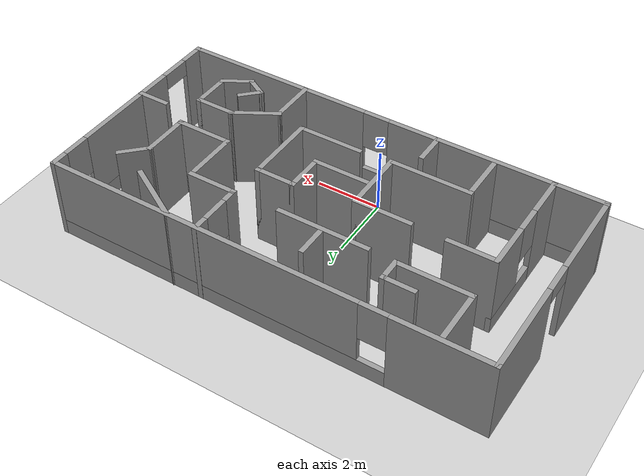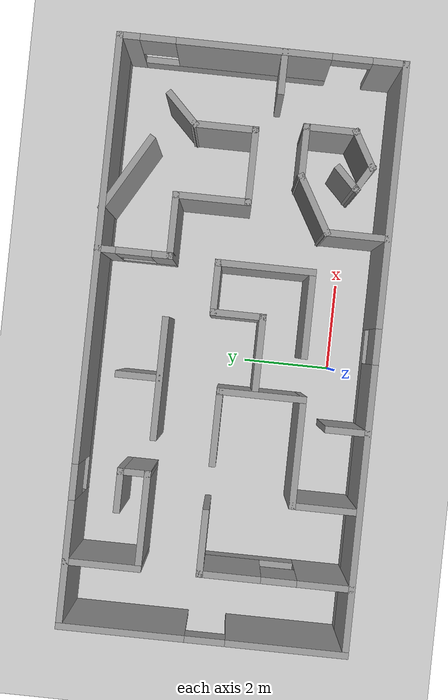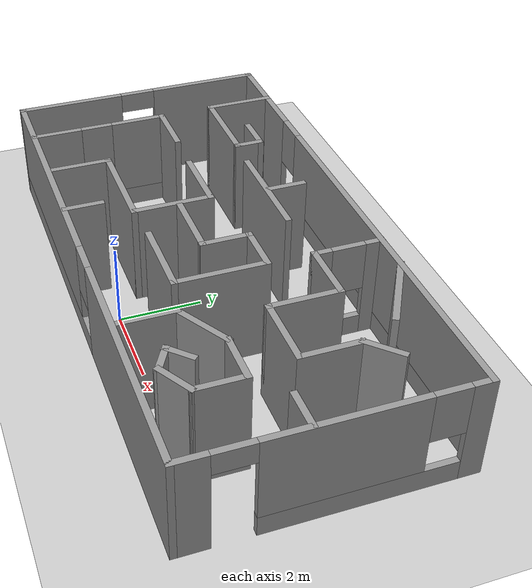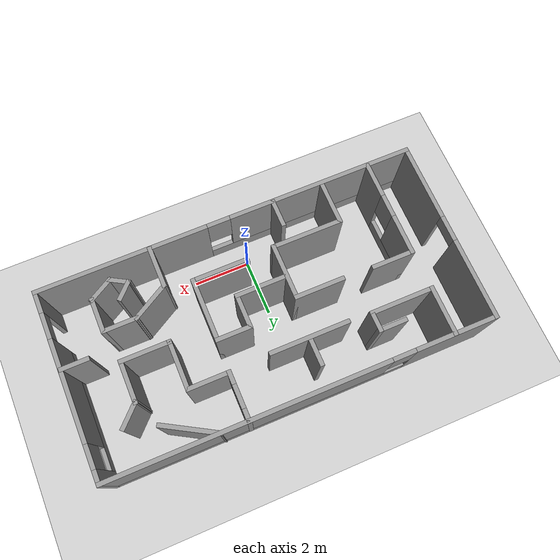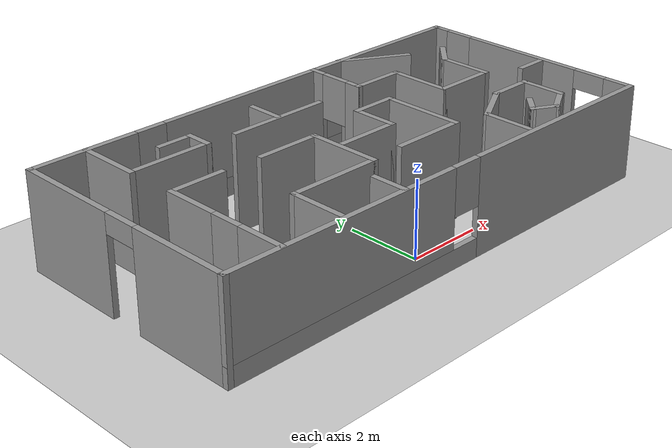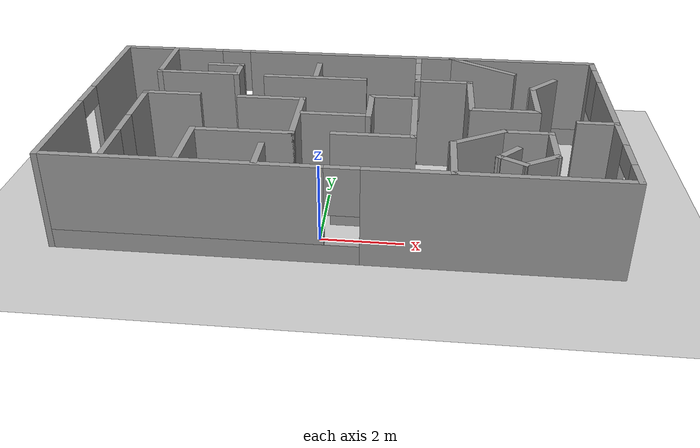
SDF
<sdf version="1.7">
 <world name="default">
  <light name="sun" type="directional">
   <pose>0 0 10 0 -0 0</pose>
   <diffuse>0.8 0.8 0.8 1</diffuse>
   <specular>0.2 0.2 0.2 1</specular>
   <attenuation>
    <range>1000</range>
    <constant>0.9</constant>
    <linear>0.01</linear>
    <quadratic>0.001</quadratic>
   </attenuation>
   <direction>-0.5 0.1 -0.9</direction>
   <spot><inner_angle>0</inner_angle><outer_angle>0</outer_angle><falloff>0</falloff></spot>
  </light>
  <model name="ground_plane">
   <static>1</static>
   <link name="link">
    <collision name="collision">
     <geometry><plane><normal>0 0 1</normal><size>100 100</size></plane></geometry>
     <surface>
      <contact><collide_bitmask>65535</collide_bitmask></contact>
      <friction><ode><mu>100</mu><mu2>50</mu2></ode></friction>
     </surface>
    </collision>
    <visual name="visual">
     <cast_shadows>0</cast_shadows>
     <geometry><plane><normal>0 0 1</normal><size>100 100</size></plane></geometry>
     <material>
      <script><uri>file://media/materials/scripts/gazebo.material</uri><name>Gazebo/Grey</name></script>
     </material>
    </visual>
   </link>
  </model>
  <gravity>0 0 -9.8</gravity>
  <magnetic_field>6e-06 2.3e-05 -4.2e-05</magnetic_field>
  <atmosphere type="adiabatic"/>
  <physics type="ode">
   <max_step_size>0.001</max_step_size>
   <real_time_factor>1</real_time_factor>
   <real_time_update_rate>1000</real_time_update_rate>
  </physics>
  <scene><ambient>0.4 0.4 0.4 1</ambient><background>0.7 0.7 0.7 1</background><shadows>1</shadows></scene>
  <spherical_coordinates>
   <surface_model>EARTH_WGS84</surface_model>
   <latitude_deg>0</latitude_deg>
   <longitude_deg>0</longitude_deg>
   <elevation>0</elevation>
   <heading_deg>0</heading_deg>
  </spherical_coordinates>
  <model name="Basic_Maze">
   <pose>0.327483 2.34993 0 0 -0 0</pose>
   <link name="Wall_0">
    <pose>-6.55 -0.015691 0 0 -0 1.5708</pose>
    <visual name="Wall_0_Visual_0">
     <pose>-1.87793 0 1.25 0 -0 0</pose>
     <geometry><box><size>2.74415 0.15 2.5</size></box></geometry>
     <material>
      <script><uri>file://media/materials/scripts/gazebo.material</uri><name>Gazebo/Grey</name></script>
      <ambient>1 1 1 1</ambient>
     </material>
     <meta><layer>0</layer></meta>
    </visual>
    <collision name="Wall_0_Collision_0">
     <geometry><box><size>2.74415 0.15 2.5</size></box></geometry>
     <pose>-1.87793 0 1.25 0 -0 0</pose>
    </collision>
    <visual name="Wall_0_Visual_1">
     <pose>1.82207 0 1.25 0 -0 0</pose>
     <geometry><box><size>2.85585 0.15 2.5</size></box></geometry>
     <material>
      <script><uri>file://media/materials/scripts/gazebo.material</uri><name>Gazebo/Grey</name></script>
      <ambient>1 1 1 1</ambient>
     </material>
     <meta><layer>0</layer></meta>
    </visual>
    <collision name="Wall_0_Collision_1">
     <geometry><box><size>2.85585 0.15 2.5</size></box></geometry>
     <pose>1.82207 0 1.25 0 -0 0</pose>
    </collision>
    <visual name="Wall_0_Visual_2">
     <pose>-0.055853 0 2.25 0 -0 0</pose>
     <geometry><box><size>0.9 0.15 0.5</size></box></geometry>
     <material>
      <script><uri>file://media/materials/scripts/gazebo.material</uri><name>Gazebo/Grey</name></script>
      <ambient>1 1 1 1</ambient>
     </material>
     <meta><layer>0</layer></meta>
    </visual>
    <collision name="Wall_0_Collision_2">
     <geometry><box><size>0.9 0.15 0.5</size></box></geometry>
     <pose>-0.055853 0 2.25 0 -0 0</pose>
    </collision>
   </link>
   <link name="Wall_1">
    <pose>-0 3.15931 0 0 -0 0</pose>
    <visual name="Wall_1_Visual_0">
     <pose>-5.19355 0 1.25 0 -0 0</pose>
     <geometry><box><size>2.86291 0.15 2.5</size></box></geometry>
     <material>
      <script><uri>file://media/materials/scripts/gazebo.material</uri><name>Gazebo/Grey</name></script>
      <ambient>1 1 1 1</ambient>
     </material>
     <meta><layer>0</layer></meta>
    </visual>
    <collision name="Wall_1_Collision_0">
     <geometry><box><size>2.86291 0.15 2.5</size></box></geometry>
     <pose>-5.19355 0 1.25 0 -0 0</pose>
    </collision>
    <visual name="Wall_1_Visual_1">
     <pose>1.43145 0 0.25 0 -0 0</pose>
     <geometry><box><size>10.3871 0.15 0.5</size></box></geometry>
     <material>
      <script><uri>file://media/materials/scripts/gazebo.material</uri><name>Gazebo/Grey</name></script>
      <ambient>1 1 1 1</ambient>
     </material>
     <meta><layer>0</layer></meta>
    </visual>
    <collision name="Wall_1_Collision_1">
     <geometry><box><size>10.3871 0.15 0.5</size></box></geometry>
     <pose>1.43145 0 0.25 0 -0 0</pose>
    </collision>
    <visual name="Wall_1_Visual_2">
     <pose>1.83145 0 1.5 0 -0 0</pose>
     <geometry><box><size>9.58709 0.15 2</size></box></geometry>
     <material>
      <script><uri>file://media/materials/scripts/gazebo.material</uri><name>Gazebo/Grey</name></script>
      <ambient>1 1 1 1</ambient>
     </material>
     <meta><layer>0</layer></meta>
    </visual>
    <collision name="Wall_1_Collision_2">
     <geometry><box><size>9.58709 0.15 2</size></box></geometry>
     <pose>1.83145 0 1.5 0 -0 0</pose>
    </collision>
    <visual name="Wall_1_Visual_3">
     <pose>-3.36209 0 1.9 0 -0 0</pose>
     <geometry><box><size>0.8 0.15 1.2</size></box></geometry>
     <material>
      <script><uri>file://media/materials/scripts/gazebo.material</uri><name>Gazebo/Grey</name></script>
      <ambient>1 1 1 1</ambient>
     </material>
     <meta><layer>0</layer></meta>
    </visual>
    <collision name="Wall_1_Collision_3">
     <geometry><box><size>0.8 0.15 1.2</size></box></geometry>
     <pose>-3.36209 0 1.9 0 -0 0</pose>
    </collision>
   </link>
   <link name="Wall_10">
    <collision name="Wall_10_Collision">
     <geometry><box><size>1 0.15 2.5</size></box></geometry>
     <pose>0 0 1.25 0 -0 0</pose>
    </collision>
    <visual name="Wall_10_Visual">
     <pose>0 0 1.25 0 -0 0</pose>
     <geometry><box><size>1 0.15 2.5</size></box></geometry>
     <material>
      <script><uri>file://media/materials/scripts/gazebo.material</uri><name>Gazebo/Grey</name></script>
      <ambient>1 1 1 1</ambient>
     </material>
     <meta><layer>0</layer></meta>
    </visual>
    <pose>-3.44265 2.15187 0 0 -0 3.14159</pose>
   </link>
   <link name="Wall_12">
    <collision name="Wall_12_Collision">
     <geometry><box><size>1.5 0.15 2.5</size></box></geometry>
     <pose>0 0 1.25 0 -0 0</pose>
    </collision>
    <visual name="Wall_12_Visual">
     <pose>0 0 1.25 0 -0 0</pose>
     <geometry><box><size>1.5 0.15 2.5</size></box></geometry>
     <material>
      <script><uri>file://media/materials/scripts/gazebo.material</uri><name>Gazebo/Grey</name></script>
      <ambient>1 1 1 1</ambient>
     </material>
     <meta><layer>0</layer></meta>
    </visual>
    <pose>-4.41224 0.190239 0 0 -0 0</pose>
   </link>
   <link name="Wall_14">
    <collision name="Wall_14_Collision">
     <geometry><box><size>1.75 0.15 2.5</size></box></geometry>
     <pose>0 0 1.25 0 -0 0</pose>
    </collision>
    <visual name="Wall_14_Visual">
     <pose>0 0 1.25 0 -0 0</pose>
     <geometry><box><size>1.75 0.15 2.5</size></box></geometry>
     <material>
      <script><uri>file://media/materials/scripts/gazebo.material</uri><name>Gazebo/Grey</name></script>
      <ambient>1 1 1 1</ambient>
     </material>
     <meta><layer>0</layer></meta>
    </visual>
    <pose>-1.83863 0.155747 0 0 -0 0</pose>
   </link>
   <link name="Wall_15">
    <collision name="Wall_15_Collision">
     <geometry><box><size>2 0.15 2.5</size></box></geometry>
     <pose>0 0 1.25 0 -0 0</pose>
    </collision>
    <visual name="Wall_15_Visual">
     <pose>0 0 1.25 0 -0 0</pose>
     <geometry><box><size>2 0.15 2.5</size></box></geometry>
     <material>
      <script><uri>file://media/materials/scripts/gazebo.material</uri><name>Gazebo/Grey</name></script>
      <ambient>1 1 1 1</ambient>
     </material>
     <meta><layer>0</layer></meta>
    </visual>
    <pose>-1.03863 -0.769253 0 0 -0 -1.5708</pose>
   </link>
   <link name="Wall_16">
    <collision name="Wall_16_Collision">
     <geometry><box><size>2.5 0.15 2.5</size></box></geometry>
     <pose>0 0 1.25 0 -0 0</pose>
    </collision>
    <visual name="Wall_16_Visual">
     <pose>0 0 1.25 0 -0 0</pose>
     <geometry><box><size>2.5 0.15 2.5</size></box></geometry>
     <material>
      <script><uri>file://media/materials/scripts/gazebo.material</uri><name>Gazebo/Grey</name></script>
      <ambient>1 1 1 1</ambient>
     </material>
     <meta><layer>0</layer></meta>
    </visual>
    <pose>-2.21363 -1.69425 0 0 -0 3.14159</pose>
   </link>
   <link name="Wall_17">
    <collision name="Wall_17_Collision">
     <geometry><box><size>1.5 0.15 2.5</size></box></geometry>
     <pose>0 0 1.25 0 -0 0</pose>
    </collision>
    <visual name="Wall_17_Visual">
     <pose>0 0 1.25 0 -0 0</pose>
     <geometry><box><size>1.5 0.15 2.5</size></box></geometry>
     <material>
      <script><uri>file://media/materials/scripts/gazebo.material</uri><name>Gazebo/Grey</name></script>
      <ambient>1 1 1 1</ambient>
     </material>
     <meta><layer>0</layer></meta>
    </visual>
    <pose>-3.38863 -2.36925 0 0 -0 -1.5708</pose>
   </link>
   <link name="Wall_19">
    <collision name="Wall_19_Collision">
     <geometry><box><size>2.75 0.15 2.5</size></box></geometry>
     <pose>0 0 1.25 0 -0 0</pose>
    </collision>
    <visual name="Wall_19_Visual">
     <pose>0 0 1.25 0 -0 0</pose>
     <geometry><box><size>2.75 0.15 2.5</size></box></geometry>
     <material>
      <script><uri>file://media/materials/scripts/gazebo.material</uri><name>Gazebo/Grey</name></script>
      <ambient>1 1 1 1</ambient>
     </material>
     <meta><layer>0</layer></meta>
    </visual>
    <pose>-0.897575 1.50933 0 0 -0 0</pose>
   </link>
   <link name="Wall_2">
    <pose>6.55 -0.015691 0 0 -0 -1.5708</pose>
    <visual name="Wall_2_Visual_0">
     <pose>-2.98838 0 1.25 0 -0 0</pose>
     <geometry><box><size>0.523244 0.15 2.5</size></box></geometry>
     <material>
      <script><uri>file://media/materials/scripts/gazebo.material</uri><name>Gazebo/Grey</name></script>
      <ambient>1 1 1 1</ambient>
     </material>
     <meta><layer>0</layer></meta>
    </visual>
    <collision name="Wall_2_Collision_0">
     <geometry><box><size>0.523244 0.15 2.5</size></box></geometry>
     <pose>-2.98838 0 1.25 0 -0 0</pose>
    </collision>
    <visual name="Wall_2_Visual_1">
     <pose>2.84314 0 1.25 0 -0 0</pose>
     <geometry><box><size>0.813713 0.15 2.5</size></box></geometry>
     <material>
      <script><uri>file://media/materials/scripts/gazebo.material</uri><name>Gazebo/Grey</name></script>
      <ambient>1 1 1 1</ambient>
     </material>
     <meta><layer>0</layer></meta>
    </visual>
    <collision name="Wall_2_Collision_1">
     <geometry><box><size>0.813713 0.15 2.5</size></box></geometry>
     <pose>2.84314 0 1.25 0 -0 0</pose>
    </collision>
    <visual name="Wall_2_Visual_2">
     <pose>-0.595234 0 0.25 0 -0 0</pose>
     <geometry><box><size>4.26304 0.15 0.5</size></box></geometry>
     <material>
      <script><uri>file://media/materials/scripts/gazebo.material</uri><name>Gazebo/Grey</name></script>
      <ambient>1 1 1 1</ambient>
     </material>
     <meta><layer>0</layer></meta>
    </visual>
    <collision name="Wall_2_Collision_2">
     <geometry><box><size>4.26304 0.15 0.5</size></box></geometry>
     <pose>-0.595234 0 0.25 0 -0 0</pose>
    </collision>
    <visual name="Wall_2_Visual_3">
     <pose>-0.195234 0 1.5 0 -0 0</pose>
     <geometry><box><size>3.46304 0.15 2</size></box></geometry>
     <material>
      <script><uri>file://media/materials/scripts/gazebo.material</uri><name>Gazebo/Grey</name></script>
      <ambient>1 1 1 1</ambient>
     </material>
     <meta><layer>0</layer></meta>
    </visual>
    <collision name="Wall_2_Collision_3">
     <geometry><box><size>3.46304 0.15 2</size></box></geometry>
     <pose>-0.195234 0 1.5 0 -0 0</pose>
    </collision>
    <visual name="Wall_2_Visual_4">
     <pose>-2.32676 0 1.9 0 -0 0</pose>
     <geometry><box><size>0.8 0.15 1.2</size></box></geometry>
     <material>
      <script><uri>file://media/materials/scripts/gazebo.material</uri><name>Gazebo/Grey</name></script>
      <ambient>1 1 1 1</ambient>
     </material>
     <meta><layer>0</layer></meta>
    </visual>
    <collision name="Wall_2_Collision_4">
     <geometry><box><size>0.8 0.15 1.2</size></box></geometry>
     <pose>-2.32676 0 1.9 0 -0 0</pose>
    </collision>
    <visual name="Wall_2_Visual_5">
     <pose>1.98629 0 2.25 0 -0 0</pose>
     <geometry><box><size>0.9 0.15 0.5</size></box></geometry>
     <material>
      <script><uri>file://media/materials/scripts/gazebo.material</uri><name>Gazebo/Grey</name></script>
      <ambient>1 1 1 1</ambient>
     </material>
     <meta><layer>0</layer></meta>
    </visual>
    <collision name="Wall_2_Collision_5">
     <geometry><box><size>0.9 0.15 0.5</size></box></geometry>
     <pose>1.98629 0 2.25 0 -0 0</pose>
    </collision>
   </link>
   <link name="Wall_21">
    <collision name="Wall_21_Collision">
     <geometry><box><size>1 0.15 2.5</size></box></geometry>
     <pose>0 0 1.25 0 -0 0</pose>
    </collision>
    <visual name="Wall_21_Visual">
     <pose>0 0 1.25 0 -0 0</pose>
     <geometry><box><size>1 0.15 2.5</size></box></geometry>
     <material>
      <script><uri>file://media/materials/scripts/gazebo.material</uri><name>Gazebo/Grey</name></script>
      <ambient>1 1 1 1</ambient>
     </material>
     <meta><layer>0</layer></meta>
    </visual>
    <pose>-0.889623 1.99516 0 0 -0 1.5708</pose>
   </link>
   <link name="Wall_23">
    <collision name="Wall_23_Collision">
     <geometry><box><size>1.75 0.15 2.5</size></box></geometry>
     <pose>0 0 1.25 0 -0 0</pose>
    </collision>
    <visual name="Wall_23_Visual">
     <pose>0 0 1.25 0 -0 0</pose>
     <geometry><box><size>1.75 0.15 2.5</size></box></geometry>
     <material>
      <script><uri>file://media/materials/scripts/gazebo.material</uri><name>Gazebo/Grey</name></script>
      <ambient>1 1 1 1</ambient>
     </material>
     <meta><layer>0</layer></meta>
    </visual>
    <pose>-0.12004 -0.6199 0 0 -0 0</pose>
   </link>
   <link name="Wall_24">
    <collision name="Wall_24_Collision">
     <geometry><box><size>1.25 0.15 2.5</size></box></geometry>
     <pose>0 0 1.25 0 -0 0</pose>
    </collision>
    <visual name="Wall_24_Visual">
     <pose>0 0 1.25 0 -0 0</pose>
     <geometry><box><size>1.25 0.15 2.5</size></box></geometry>
     <material>
      <script><uri>file://media/materials/scripts/gazebo.material</uri><name>Gazebo/Grey</name></script>
      <ambient>1 1 1 1</ambient>
     </material>
     <meta><layer>0</layer></meta>
    </visual>
    <pose>0.67996 -0.0699 0 0 -0 1.5708</pose>
   </link>
   <link name="Wall_25">
    <collision name="Wall_25_Collision">
     <geometry><box><size>1.25 0.15 2.5</size></box></geometry>
     <pose>0 0 1.25 0 -0 0</pose>
    </collision>
    <visual name="Wall_25_Visual">
     <pose>0 0 1.25 0 -0 0</pose>
     <geometry><box><size>1.25 0.15 2.5</size></box></geometry>
     <material>
      <script><uri>file://media/materials/scripts/gazebo.material</uri><name>Gazebo/Grey</name></script>
      <ambient>1 1 1 1</ambient>
     </material>
     <meta><layer>0</layer></meta>
    </visual>
    <pose>1.22996 0.4801 0 0 -0 0</pose>
   </link>
   <link name="Wall_26">
    <collision name="Wall_26_Collision">
     <geometry><box><size>2.25 0.15 2.5</size></box></geometry>
     <pose>0 0 1.25 0 -0 0</pose>
    </collision>
    <visual name="Wall_26_Visual">
     <pose>0 0 1.25 0 -0 0</pose>
     <geometry><box><size>2.25 0.15 2.5</size></box></geometry>
     <material>
      <script><uri>file://media/materials/scripts/gazebo.material</uri><name>Gazebo/Grey</name></script>
      <ambient>1 1 1 1</ambient>
     </material>
     <meta><layer>0</layer></meta>
    </visual>
    <pose>1.77996 -0.5699 0 0 -0 -1.5708</pose>
   </link>
   <link name="Wall_27">
    <collision name="Wall_27_Collision">
     <geometry><box><size>2 0.15 2.5</size></box></geometry>
     <pose>0 0 1.25 0 -0 0</pose>
    </collision>
    <visual name="Wall_27_Visual">
     <pose>0 0 1.25 0 -0 0</pose>
     <geometry><box><size>2 0.15 2.5</size></box></geometry>
     <material>
      <script><uri>file://media/materials/scripts/gazebo.material</uri><name>Gazebo/Grey</name></script>
      <ambient>1 1 1 1</ambient>
     </material>
     <meta><layer>0</layer></meta>
    </visual>
    <pose>0.85496 -1.6199 0 0 -0 3.14159</pose>
   </link>
   <link name="Wall_29">
    <collision name="Wall_29_Collision">
     <geometry><box><size>1 0.15 2.5</size></box></geometry>
     <pose>0 0 1.25 0 -0 0</pose>
    </collision>
    <visual name="Wall_29_Visual">
     <pose>0 0 1.25 0 -0 0</pose>
     <geometry><box><size>1 0.15 2.5</size></box></geometry>
     <material>
      <script><uri>file://media/materials/scripts/gazebo.material</uri><name>Gazebo/Grey</name></script>
      <ambient>1 1 1 1</ambient>
     </material>
     <meta><layer>0</layer></meta>
    </visual>
    <pose>-1.63485 -2.73476 0 0 -0 1.5708</pose>
   </link>
   <link name="Wall_3">
    <pose>-0 -3.19069 0 0 -0 3.14159</pose>
    <visual name="Wall_3_Visual_0">
     <pose>-3.65754 0 1.25 0 -0 0</pose>
     <geometry><box><size>5.93492 0.15 2.5</size></box></geometry>
     <material>
      <script><uri>file://media/materials/scripts/gazebo.material</uri><name>Gazebo/Grey</name></script>
      <ambient>1 1 1 1</ambient>
     </material>
     <meta><layer>0</layer></meta>
    </visual>
    <collision name="Wall_3_Collision_0">
     <geometry><box><size>5.93492 0.15 2.5</size></box></geometry>
     <pose>-3.65754 0 1.25 0 -0 0</pose>
    </collision>
    <visual name="Wall_3_Visual_1">
     <pose>2.96746 0 0.25 0 -0 0</pose>
     <geometry><box><size>7.31508 0.15 0.5</size></box></geometry>
     <material>
      <script><uri>file://media/materials/scripts/gazebo.material</uri><name>Gazebo/Grey</name></script>
      <ambient>1 1 1 1</ambient>
     </material>
     <meta><layer>0</layer></meta>
    </visual>
    <collision name="Wall_3_Collision_1">
     <geometry><box><size>7.31508 0.15 0.5</size></box></geometry>
     <pose>2.96746 0 0.25 0 -0 0</pose>
    </collision>
    <visual name="Wall_3_Visual_2">
     <pose>3.36746 0 1.5 0 -0 0</pose>
     <geometry><box><size>6.51508 0.15 2</size></box></geometry>
     <material>
      <script><uri>file://media/materials/scripts/gazebo.material</uri><name>Gazebo/Grey</name></script>
      <ambient>1 1 1 1</ambient>
     </material>
     <meta><layer>0</layer></meta>
    </visual>
    <collision name="Wall_3_Collision_2">
     <geometry><box><size>6.51508 0.15 2</size></box></geometry>
     <pose>3.36746 0 1.5 0 -0 0</pose>
    </collision>
    <visual name="Wall_3_Visual_3">
     <pose>-0.290082 0 1.9 0 -0 0</pose>
     <geometry><box><size>0.8 0.15 1.2</size></box></geometry>
     <material>
      <script><uri>file://media/materials/scripts/gazebo.material</uri><name>Gazebo/Grey</name></script>
      <ambient>1 1 1 1</ambient>
     </material>
     <meta><layer>0</layer></meta>
    </visual>
    <collision name="Wall_3_Collision_3">
     <geometry><box><size>0.8 0.15 1.2</size></box></geometry>
     <pose>-0.290082 0 1.9 0 -0 0</pose>
    </collision>
   </link>
   <link name="Wall_31">
    <collision name="Wall_31_Collision">
     <geometry><box><size>1.5 0.15 2.5</size></box></geometry>
     <pose>0 0 1.25 0 -0 0</pose>
    </collision>
    <visual name="Wall_31_Visual">
     <pose>0 0 1.25 0 -0 0</pose>
     <geometry><box><size>1.5 0.15 2.5</size></box></geometry>
     <material>
      <script><uri>file://media/materials/scripts/gazebo.material</uri><name>Gazebo/Grey</name></script>
      <ambient>1 1 1 1</ambient>
     </material>
     <meta><layer>0</layer></meta>
    </visual>
    <pose>2.68443 -2.49997 0 0 -0 1.5708</pose>
   </link>
   <link name="Wall_32">
    <collision name="Wall_32_Collision">
     <geometry><box><size>1.5 0.15 2.5</size></box></geometry>
     <pose>0 0 1.25 0 -0 0</pose>
    </collision>
    <visual name="Wall_32_Visual">
     <pose>0 0 1.25 0 -0 0</pose>
     <geometry><box><size>1.5 0.15 2.5</size></box></geometry>
     <material>
      <script><uri>file://media/materials/scripts/gazebo.material</uri><name>Gazebo/Grey</name></script>
      <ambient>1 1 1 1</ambient>
     </material>
     <meta><layer>0</layer></meta>
    </visual>
    <pose>3.269 -1.48747 0 0 -0 0.523599</pose>
   </link>
   <link name="Wall_33">
    <collision name="Wall_33_Collision">
     <geometry><box><size>1.25 0.15 2.5</size></box></geometry>
     <pose>0 0 1.25 0 -0 0</pose>
    </collision>
    <visual name="Wall_33_Visual">
     <pose>0 0 1.25 0 -0 0</pose>
     <geometry><box><size>1.25 0.15 2.5</size></box></geometry>
     <material>
      <script><uri>file://media/materials/scripts/gazebo.material</uri><name>Gazebo/Grey</name></script>
      <ambient>1 1 1 1</ambient>
     </material>
     <meta><layer>0</layer></meta>
    </visual>
    <pose>4.40357 -1.14997 0 0 -0 0</pose>
   </link>
   <link name="Wall_34">
    <collision name="Wall_34_Collision">
     <geometry><box><size>1.25 0.15 2.5</size></box></geometry>
     <pose>0 0 1.25 0 -0 0</pose>
    </collision>
    <visual name="Wall_34_Visual">
     <pose>0 0 1.25 0 -0 0</pose>
     <geometry><box><size>1.25 0.15 2.5</size></box></geometry>
     <material>
      <script><uri>file://media/materials/scripts/gazebo.material</uri><name>Gazebo/Grey</name></script>
      <ambient>1 1 1 1</ambient>
     </material>
     <meta><layer>0</layer></meta>
    </visual>
    <pose>4.95357 -1.69997 0 0 -0 -1.5708</pose>
   </link>
   <link name="Wall_35">
    <collision name="Wall_35_Collision">
     <geometry><box><size>1 0.15 2.5</size></box></geometry>
     <pose>0 0 1.25 0 -0 0</pose>
    </collision>
    <visual name="Wall_35_Visual">
     <pose>0 0 1.25 0 -0 0</pose>
     <geometry><box><size>1 0.15 2.5</size></box></geometry>
     <material>
      <script><uri>file://media/materials/scripts/gazebo.material</uri><name>Gazebo/Grey</name></script>
      <ambient>1 1 1 1</ambient>
     </material>
     <meta><layer>0</layer></meta>
    </visual>
    <pose>4.58551 -2.46247 0 0 -0 -2.61799</pose>
   </link>
   <link name="Wall_36">
    <collision name="Wall_36_Collision">
     <geometry><box><size>0.75 0.15 2.5</size></box></geometry>
     <pose>0 0 1.25 0 -0 0</pose>
    </collision>
    <visual name="Wall_36_Visual">
     <pose>0 0 1.25 0 -0 0</pose>
     <geometry><box><size>0.75 0.15 2.5</size></box></geometry>
     <material>
      <script><uri>file://media/materials/scripts/gazebo.material</uri><name>Gazebo/Grey</name></script>
      <ambient>1 1 1 1</ambient>
     </material>
     <meta><layer>0</layer></meta>
    </visual>
    <pose>3.95764 -2.52497 0 0 -0 2.61799</pose>
   </link>
   <link name="Wall_37">
    <collision name="Wall_37_Collision">
     <geometry><box><size>0.75 0.15 2.5</size></box></geometry>
     <pose>0 0 1.25 0 -0 0</pose>
    </collision>
    <visual name="Wall_37_Visual">
     <pose>0 0 1.25 0 -0 0</pose>
     <geometry><box><size>0.75 0.15 2.5</size></box></geometry>
     <material>
      <script><uri>file://media/materials/scripts/gazebo.material</uri><name>Gazebo/Grey</name></script>
      <ambient>1 1 1 1</ambient>
     </material>
     <meta><layer>0</layer></meta>
    </visual>
    <pose>3.90996 -2.16284 0 0 -0 0.785398</pose>
   </link>
   <link name="Wall_41">
    <pose>1.82052 2.36324 0 0 -0 -1.5708</pose>
    <visual name="Wall_41_Visual_0">
     <pose>-0.6375 0 1.25 0 -0 0</pose>
     <geometry><box><size>0.475 0.15 2.5</size></box></geometry>
     <material>
      <script><uri>file://media/materials/scripts/gazebo.material</uri><name>Gazebo/Grey</name></script>
      <ambient>1 1 1 1</ambient>
     </material>
     <meta><layer>0</layer></meta>
    </visual>
    <collision name="Wall_41_Collision_0">
     <geometry><box><size>0.475 0.15 2.5</size></box></geometry>
     <pose>-0.6375 0 1.25 0 -0 0</pose>
    </collision>
    <visual name="Wall_41_Visual_1">
     <pose>0.2375 0 0.25 0 -0 0</pose>
     <geometry><box><size>1.275 0.15 0.5</size></box></geometry>
     <material>
      <script><uri>file://media/materials/scripts/gazebo.material</uri><name>Gazebo/Grey</name></script>
      <ambient>1 1 1 1</ambient>
     </material>
     <meta><layer>0</layer></meta>
    </visual>
    <collision name="Wall_41_Collision_1">
     <geometry><box><size>1.275 0.15 0.5</size></box></geometry>
     <pose>0.2375 0 0.25 0 -0 0</pose>
    </collision>
    <visual name="Wall_41_Visual_2">
     <pose>0.6375 0 1.5 0 -0 0</pose>
     <geometry><box><size>0.475 0.15 2</size></box></geometry>
     <material>
      <script><uri>file://media/materials/scripts/gazebo.material</uri><name>Gazebo/Grey</name></script>
      <ambient>1 1 1 1</ambient>
     </material>
     <meta><layer>0</layer></meta>
    </visual>
    <collision name="Wall_41_Collision_2">
     <geometry><box><size>0.475 0.15 2</size></box></geometry>
     <pose>0.6375 0 1.5 0 -0 0</pose>
    </collision>
    <visual name="Wall_41_Visual_3">
     <pose>-0 0 1.9 0 -0 0</pose>
     <geometry><box><size>0.8 0.15 1.2</size></box></geometry>
     <material>
      <script><uri>file://media/materials/scripts/gazebo.material</uri><name>Gazebo/Grey</name></script>
      <ambient>1 1 1 1</ambient>
     </material>
     <meta><layer>0</layer></meta>
    </visual>
    <collision name="Wall_41_Collision_3">
     <geometry><box><size>0.8 0.15 1.2</size></box></geometry>
     <pose>-0 0 1.9 0 -0 0</pose>
    </collision>
   </link>
   <link name="Wall_42">
    <collision name="Wall_42_Collision">
     <geometry><box><size>1.5 0.15 2.5</size></box></geometry>
     <pose>0 0 1.25 0 -0 0</pose>
    </collision>
    <visual name="Wall_42_Visual">
     <pose>0 0 1.25 0 -0 0</pose>
     <geometry><box><size>1.5 0.15 2.5</size></box></geometry>
     <material>
      <script><uri>file://media/materials/scripts/gazebo.material</uri><name>Gazebo/Grey</name></script>
      <ambient>1 1 1 1</ambient>
     </material>
     <meta><layer>0</layer></meta>
    </visual>
    <pose>2.49552 1.56324 0 0 -0 0</pose>
   </link>
   <link name="Wall_43">
    <collision name="Wall_43_Collision">
     <geometry><box><size>1.75 0.15 2.5</size></box></geometry>
     <pose>0 0 1.25 0 -0 0</pose>
    </collision>
    <visual name="Wall_43_Visual">
     <pose>0 0 1.25 0 -0 0</pose>
     <geometry><box><size>1.75 0.15 2.5</size></box></geometry>
     <material>
      <script><uri>file://media/materials/scripts/gazebo.material</uri><name>Gazebo/Grey</name></script>
      <ambient>1 1 1 1</ambient>
     </material>
     <meta><layer>0</layer></meta>
    </visual>
    <pose>3.17052 0.763239 0 0 -0 -1.5708</pose>
   </link>
   <link name="Wall_44">
    <collision name="Wall_44_Collision">
     <geometry><box><size>1.75 0.15 2.5</size></box></geometry>
     <pose>0 0 1.25 0 -0 0</pose>
    </collision>
    <visual name="Wall_44_Visual">
     <pose>0 0 1.25 0 -0 0</pose>
     <geometry><box><size>1.75 0.15 2.5</size></box></geometry>
     <material>
      <script><uri>file://media/materials/scripts/gazebo.material</uri><name>Gazebo/Grey</name></script>
      <ambient>1 1 1 1</ambient>
     </material>
     <meta><layer>0</layer></meta>
    </visual>
    <pose>3.97052 -0.036761 0 0 -0 0</pose>
   </link>
   <link name="Wall_45">
    <collision name="Wall_45_Collision">
     <geometry><box><size>1.5 0.15 2.5</size></box></geometry>
     <pose>0 0 1.25 0 -0 0</pose>
    </collision>
    <visual name="Wall_45_Visual">
     <pose>0 0 1.25 0 -0 0</pose>
     <geometry><box><size>1.5 0.15 2.5</size></box></geometry>
     <material>
      <script><uri>file://media/materials/scripts/gazebo.material</uri><name>Gazebo/Grey</name></script>
      <ambient>1 1 1 1</ambient>
     </material>
     <meta><layer>0</layer></meta>
    </visual>
    <pose>4.77052 0.638239 0 0 -0 1.5708</pose>
   </link>
   <link name="Wall_46">
    <collision name="Wall_46_Collision">
     <geometry><box><size>1 0.15 2.5</size></box></geometry>
     <pose>0 0 1.25 0 -0 0</pose>
    </collision>
    <visual name="Wall_46_Visual">
     <pose>0 0 1.25 0 -0 0</pose>
     <geometry><box><size>1 0.15 2.5</size></box></geometry>
     <material>
      <script><uri>file://media/materials/scripts/gazebo.material</uri><name>Gazebo/Grey</name></script>
      <ambient>1 1 1 1</ambient>
     </material>
     <meta><layer>0</layer></meta>
    </visual>
    <pose>5.07104 1.61376 0 0 -0 0.785398</pose>
   </link>
   <link name="Wall_48">
    <collision name="Wall_48_Collision">
     <geometry><box><size>2 0.15 2.5</size></box></geometry>
     <pose>0 0 1.25 0 -0 0</pose>
    </collision>
    <visual name="Wall_48_Visual">
     <pose>0 0 1.25 0 -0 0</pose>
     <geometry><box><size>2 0.15 2.5</size></box></geometry>
     <material>
      <script><uri>file://media/materials/scripts/gazebo.material</uri><name>Gazebo/Grey</name></script>
      <ambient>1 1 1 1</ambient>
     </material>
     <meta><layer>0</layer></meta>
    </visual>
    <pose>3.54333 2.70074 0 0 -0 -0.523599</pose>
   </link>
   <link name="Wall_5">
    <pose>-5.08724 -1.48476 0 0 -0 1.5708</pose>
    <visual name="Wall_5_Visual_0">
     <pose>-1.11622 0 1.25 0 -0 0</pose>
     <geometry><box><size>1.26757 0.15 2.5</size></box></geometry>
     <material>
      <script><uri>file://media/materials/scripts/gazebo.material</uri><name>Gazebo/Grey</name></script>
      <ambient>1 1 1 1</ambient>
     </material>
     <meta><layer>0</layer></meta>
    </visual>
    <collision name="Wall_5_Collision_0">
     <geometry><box><size>1.26757 0.15 2.5</size></box></geometry>
     <pose>-1.11622 0 1.25 0 -0 0</pose>
    </collision>
    <visual name="Wall_5_Visual_1">
     <pose>0.633783 0 0.25 0 -0 0</pose>
     <geometry><box><size>2.23244 0.15 0.5</size></box></geometry>
     <material>
      <script><uri>file://media/materials/scripts/gazebo.material</uri><name>Gazebo/Grey</name></script>
      <ambient>1 1 1 1</ambient>
     </material>
     <meta><layer>0</layer></meta>
    </visual>
    <collision name="Wall_5_Collision_1">
     <geometry><box><size>2.23244 0.15 0.5</size></box></geometry>
     <pose>0.633783 0 0.25 0 -0 0</pose>
    </collision>
    <visual name="Wall_5_Visual_2">
     <pose>1.03378 0 1.5 0 -0 0</pose>
     <geometry><box><size>1.43243 0.15 2</size></box></geometry>
     <material>
      <script><uri>file://media/materials/scripts/gazebo.material</uri><name>Gazebo/Grey</name></script>
      <ambient>1 1 1 1</ambient>
     </material>
     <meta><layer>0</layer></meta>
    </visual>
    <collision name="Wall_5_Collision_2">
     <geometry><box><size>1.43243 0.15 2</size></box></geometry>
     <pose>1.03378 0 1.5 0 -0 0</pose>
    </collision>
    <visual name="Wall_5_Visual_3">
     <pose>-0.082435 0 1.9 0 -0 0</pose>
     <geometry><box><size>0.8 0.15 1.2</size></box></geometry>
     <material>
      <script><uri>file://media/materials/scripts/gazebo.material</uri><name>Gazebo/Grey</name></script>
      <ambient>1 1 1 1</ambient>
     </material>
     <meta><layer>0</layer></meta>
    </visual>
    <collision name="Wall_5_Collision_3">
     <geometry><box><size>0.8 0.15 1.2</size></box></geometry>
     <pose>-0.082435 0 1.9 0 -0 0</pose>
    </collision>
   </link>
   <link name="Wall_50">
    <collision name="Wall_50_Collision">
     <geometry><box><size>1 0.15 2.5</size></box></geometry>
     <pose>0 0 1.25 0 -0 0</pose>
    </collision>
    <visual name="Wall_50_Visual">
     <pose>0 0 1.25 0 -0 0</pose>
     <geometry><box><size>1 0.15 2.5</size></box></geometry>
     <material>
      <script><uri>file://media/materials/scripts/gazebo.material</uri><name>Gazebo/Grey</name></script>
      <ambient>1 1 1 1</ambient>
     </material>
     <meta><layer>0</layer></meta>
    </visual>
    <pose>6.10856 -0.506326 0 0 -0 3.14159</pose>
   </link>
   <link name="Wall_7">
    <collision name="Wall_7_Collision">
     <geometry><box><size>1.75 0.15 2.5</size></box></geometry>
     <pose>0 0 1.25 0 -0 0</pose>
    </collision>
    <visual name="Wall_7_Visual">
     <pose>0 0 1.25 0 -0 0</pose>
     <geometry><box><size>1.75 0.15 2.5</size></box></geometry>
     <material>
      <script><uri>file://media/materials/scripts/gazebo.material</uri><name>Gazebo/Grey</name></script>
      <ambient>1 1 1 1</ambient>
     </material>
     <meta><layer>0</layer></meta>
    </visual>
    <pose>-5.11766 2.35187 0 0 -0 -1.5708</pose>
   </link>
   <link name="Wall_8">
    <collision name="Wall_8_Collision">
     <geometry><box><size>2.25 0.15 2.5</size></box></geometry>
     <pose>0 0 1.25 0 -0 0</pose>
    </collision>
    <visual name="Wall_8_Visual">
     <pose>0 0 1.25 0 -0 0</pose>
     <geometry><box><size>2.25 0.15 2.5</size></box></geometry>
     <material>
      <script><uri>file://media/materials/scripts/gazebo.material</uri><name>Gazebo/Grey</name></script>
      <ambient>1 1 1 1</ambient>
     </material>
     <meta><layer>0</layer></meta>
    </visual>
    <pose>-4.06766 1.55187 0 0 -0 0</pose>
   </link>
   <link name="Wall_9">
    <collision name="Wall_9_Collision">
     <geometry><box><size>0.75 0.15 2.5</size></box></geometry>
     <pose>0 0 1.25 0 -0 0</pose>
    </collision>
    <visual name="Wall_9_Visual">
     <pose>0 0 1.25 0 -0 0</pose>
     <geometry><box><size>0.75 0.15 2.5</size></box></geometry>
     <material>
      <script><uri>file://media/materials/scripts/gazebo.material</uri><name>Gazebo/Grey</name></script>
      <ambient>1 1 1 1</ambient>
     </material>
     <meta><layer>0</layer></meta>
    </visual>
    <pose>-3.01765 1.85187 0 0 -0 1.5708</pose>
   </link>
   <static>1</static>
  </model>
 </world>
</sdf>
